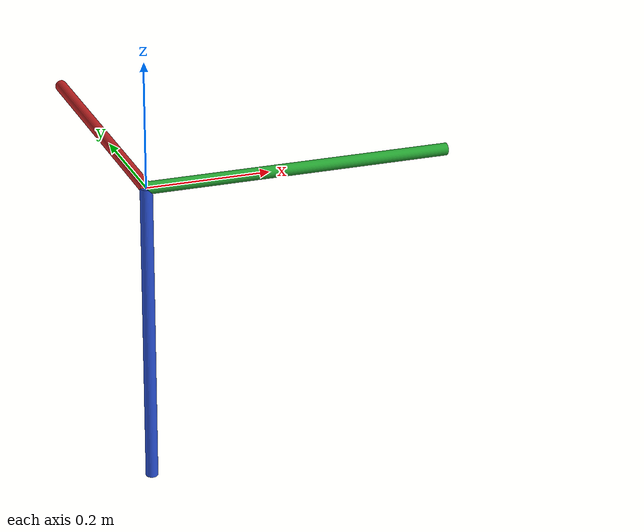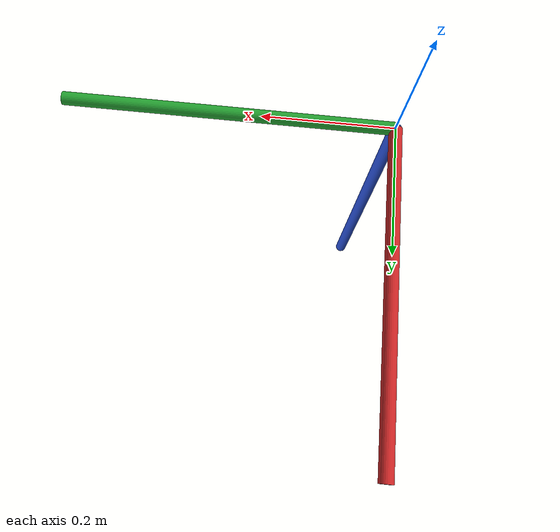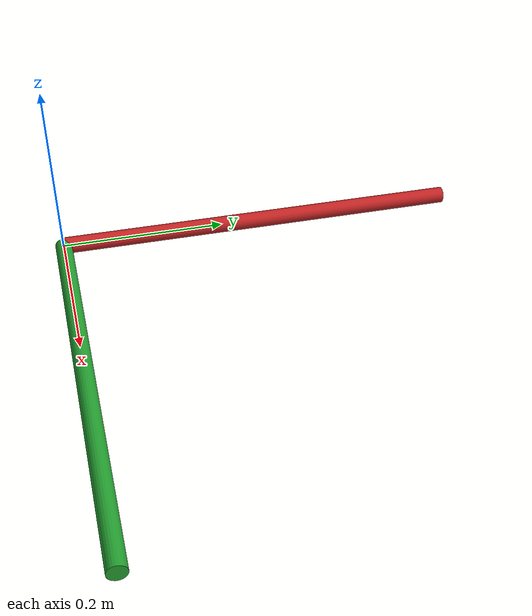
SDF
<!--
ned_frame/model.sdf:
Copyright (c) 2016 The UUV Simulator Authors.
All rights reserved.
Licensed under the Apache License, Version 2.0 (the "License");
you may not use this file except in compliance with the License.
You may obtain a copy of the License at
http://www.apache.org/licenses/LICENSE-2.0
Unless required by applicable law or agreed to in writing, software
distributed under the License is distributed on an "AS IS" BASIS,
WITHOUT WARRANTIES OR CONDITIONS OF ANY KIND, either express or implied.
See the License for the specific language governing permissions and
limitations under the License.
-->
<sdf version="1.4">
 <world name="tac_sea">
  <physics name="default_physics" default="true" type="ode">
   <max_step_size>0.01</max_step_size>
   <real_time_factor>1</real_time_factor>
   <real_time_update_rate>100</real_time_update_rate>
  </physics>
  <spherical_coordinates>
   <latitude_deg>56.71897669633431</latitude_deg>
   <longitude_deg>3.515625</longitude_deg>
  </spherical_coordinates>
  <light type="directional" name="underwater_sun1">
   <pose>50 0 150 0 0 0</pose>
   <diffuse>0.05 0.1 0.2 0.1</diffuse>
   <specular>0.01 0.01 0.01 1</specular>
   <direction>0.1 0.1 -1</direction>
   <cast_shadows>false</cast_shadows>
  </light>
  <light type="directional" name="underwater_diffuse_1">
   <pose>-50 0 -150 0 0 0</pose>
   <diffuse>0.2 0.3 0.4 0.8</diffuse>
   <specular>0 0 0 1</specular>
   <direction>-0.1 -0.1 -0.9</direction>
   <cast_shadows>false</cast_shadows>
  </light>
  <light type="directional" name="underwater_diffuse_2">
   <pose>-100 500 -20 0 0 0</pose>
   <diffuse>0.3 0.4 0.5 0.6</diffuse>
   <specular>0.1 0.1 0.1 1</specular>
   <direction>-0.2 -0.2 -0.7</direction>
   <cast_shadows>false</cast_shadows>
  </light>
  <light type="directional" name="underwater_diffuse_3">
   <pose>100 50 20 0 0 0</pose>
   <diffuse>0.15 0.2 0.25 0.6</diffuse>
   <specular>0 0 0 1</specular>
   <direction>-0.1 -0.1 -0.8</direction>
   <cast_shadows>false</cast_shadows>
  </light>
  <light type="directional" name="underwater_diffuse_4">
   <pose>-150 -130 50 0 0 0</pose>
   <diffuse>0.1 0.15 0.2 0.5</diffuse>
   <specular>0.05 0.05 0.05 1</specular>
   <direction>0.2 0.2 -0.7</direction>
   <cast_shadows>false</cast_shadows>
  </light>
  <include><uri>model://ned_frame</uri></include>
  <include><uri>model://tac_pipe</uri><name>tac_pipeline</name><pose>3 0 -2.5 0 0 -1.5708</pose></include>
  <plugin name="underwater_current_plugin" filename="libuuv_underwater_current_ros_plugin.so">
   <namespace>hydrodynamics</namespace>
   <constant_current>
    <topic>current_velocity</topic>
    <velocity><mean>0</mean><min>0</min><max>5</max><mu>0.0</mu><noiseAmp>0.0</noiseAmp></velocity>
    <horizontal_angle>
     <mean>0</mean>
     <min>-3.141592653589793238</min>
     <max>3.141592653589793238</max>
     <mu>0.0</mu>
     <noiseAmp>0.0</noiseAmp>
    </horizontal_angle>
    <vertical_angle>
     <mean>0</mean>
     <min>-3.141592653589793238</min>
     <max>3.141592653589793238</max>
     <mu>0.0</mu>
     <noiseAmp>0.0</noiseAmp>
    </vertical_angle>
   </constant_current>
  </plugin>
  <plugin name="sc_interface" filename="libuuv_sc_ros_interface_plugin.so"/>
 </world>
</sdf>

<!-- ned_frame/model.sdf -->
<sdf version='1.5'>
    <model name="world_ned">

      <pose>0 0 0 0 0 0</pose>
      <static>true</static>

      <link name="world_ned">
        <gravity>0</gravity>
        <pose>0 0 0 3.14159265359 0 1.5707963267948966</pose>

        <visual name="N_visual">
          <pose>0.25 0 0 1.5707963267948966 0 1.5707963267948966</pose>
          <geometry>
            <cylinder>
              <radius>0.01</radius>
              <length>0.5</length>
            </cylinder>
          </geometry>
          <material>
            <script>
              <uri>file://media/materials/scripts/gazebo.material</uri>
              <name>Gazebo/Red</name>
            </script>
          </material>
        </visual>

        <visual name="E_visual">
          <pose>0 0.25 0 1.5707963267948966 0 0</pose>
          <geometry>
            <cylinder>
              <radius>0.01</radius>
              <length>0.5</length>
            </cylinder>
          </geometry>
          <material>
            <script>
              <uri>file://media/materials/scripts/gazebo.material</uri>
              <name>Gazebo/Green</name>
            </script>
          </material>
        </visual>

        <visual name="D_visual">
          <pose>0 0 0.25 0 0 0</pose>
          <geometry>
            <cylinder>
              <radius>0.01</radius>
              <length>0.5</length>
            </cylinder>
          </geometry>
          <material>
            <script>
              <uri>file://media/materials/scripts/gazebo.material</uri>
              <name>Gazebo/Blue</name>
            </script>
          </material>
        </visual>
      </link>
    </model>
</sdf>

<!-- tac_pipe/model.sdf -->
<sdf version="1.6">
  <model name="tac_pipe">
    <static>true</static>
    <link name="link">
      <pose>0 0 0 0 0 0</pose>
      <visual name="visual">
        <geometry>
          <mesh>
            <uri>model://tac_pipe/tac_pipe_with_markers.dae</uri>
            <scale>0.1 0.1 0.1</scale>
          </mesh>
        </geometry>
      </visual>
      <collision name="collision">
        <geometry>
          <mesh>
            <uri>model://tac_pipe/tac_pipe_with_markers.dae</uri>
            <scale>0.001 0.001 0.001</scale>
          </mesh>
        </geometry>
      </collision>
    </link>
  </model>
</sdf>
